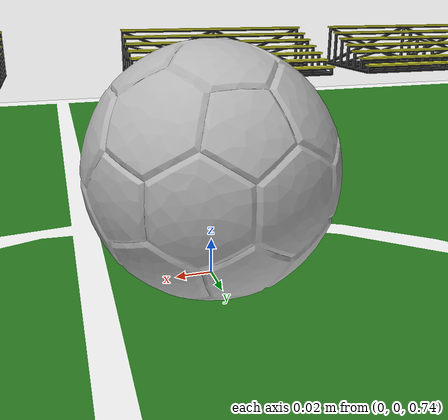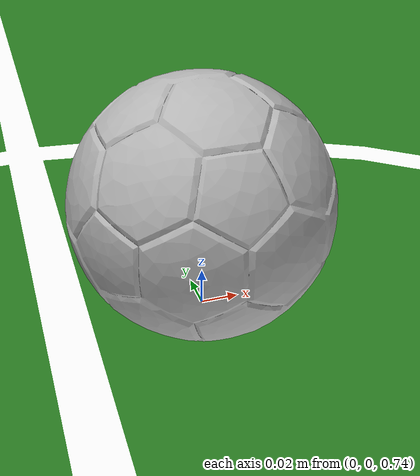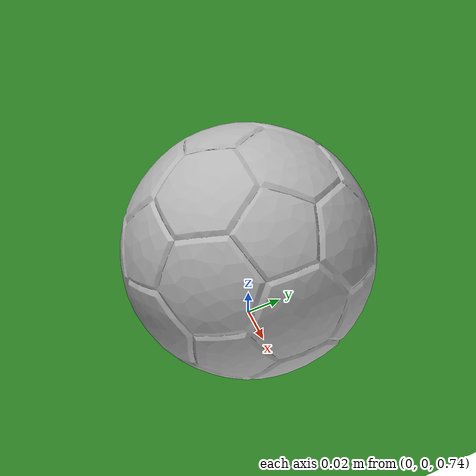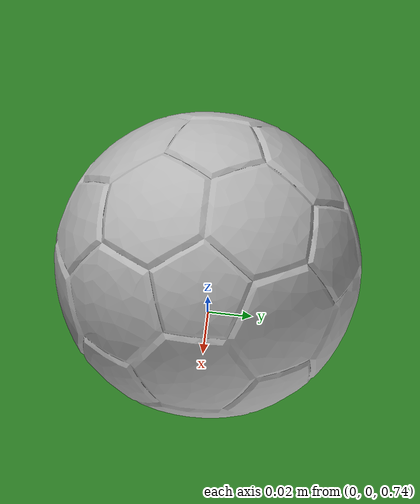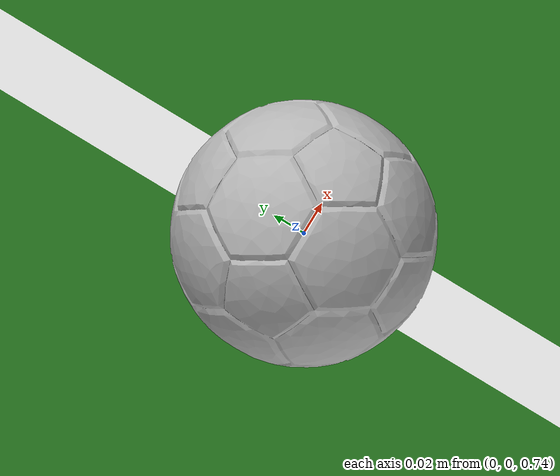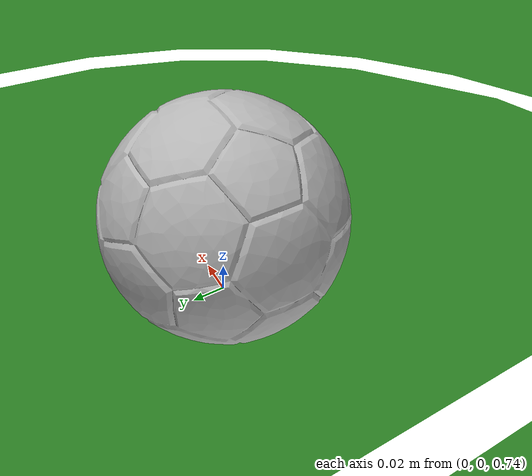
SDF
<?xml version="1.0" ?>

<sdf version="1.6">
  <world name="soccer_playground">
    <physics name="2.5ms" type="ignored">
      <max_step_size>0.0025</max_step_size>
      <real_time_factor>1</real_time_factor>
    </physics>

    <scene>
      <ambient>0.2 0.2 0.2 1</ambient>
      <background>0.8 0.8 0.8 1</background>
      <grid>true</grid>
      <shadows>true</shadows>
    </scene>

    <plugin
      filename="libignition-gazebo-physics-system.so"
      name="ignition::gazebo::systems::Physics">
    </plugin>
    <plugin
      filename="libignition-gazebo-user-commands-system.so"
      name="ignition::gazebo::systems::UserCommands">
    </plugin>
    <plugin
      filename="libignition-gazebo-contact-system.so"
      name="ignition::gazebo::systems::Contact">
    </plugin>
    <plugin
      filename="libignition-gazebo-scene-broadcaster-system.so"
      name="ignition::gazebo::systems::SceneBroadcaster">
    </plugin>

    <gui fullscreen="0">
      <!-- 3D scene -->
      <plugin filename="GzScene3D" name="3D View">
        <ignition-gui>
          <title>3D View</title>
          <property type="bool" key="showTitleBar">false</property>
          <property type="string" key="state">docked</property>
        </ignition-gui>
        <engine>ogre2</engine>
        <scene>scene</scene>
        <ambient_light>0.7 0.7 0.7</ambient_light>
        <background_color>0.8 0.8 0.8</background_color>
        <camera_pose>1 1 1 0 0.5 3.92</camera_pose>
      </plugin>

      <!-- World control -->
      <plugin filename="WorldControl" name="World control">
        <ignition-gui>
          <title>World control</title>
          <property type="bool" key="showTitleBar">false</property>
          <property type="bool" key="resizable">false</property>
          <property type="double" key="height">72</property>
          <property type="double" key="width">121</property>
          <property type="double" key="z">1</property>
          <property type="string" key="state">floating</property>
          <anchors target="3D View">
            <line own="left" target="left"/>
            <line own="bottom" target="bottom"/>
          </anchors>
        </ignition-gui>

        <play_pause>true</play_pause>
        <step>true</step>
        <start_paused>true</start_paused>
        <service>/world/soccer_playground/control</service>
        <stats_topic>/world/soccer_playground/stats</stats_topic>
      </plugin>

      <!-- World statistics -->
      <plugin filename="WorldStats" name="World stats">
        <ignition-gui>
          <title>World stats</title>
          <property type="bool" key="showTitleBar">false</property>
          <property type="bool" key="resizable">false</property>
          <property type="double" key="height">110</property>
          <property type="double" key="width">290</property>
          <property type="double" key="z">1</property>
          <property type="string" key="state">floating</property>
          <anchors target="3D View">
            <line own="right" target="right"/>
            <line own="bottom" target="bottom"/>
          </anchors>
        </ignition-gui>

        <sim_time>true</sim_time>
        <real_time>true</real_time>
        <real_time_factor>true</real_time_factor>
        <iterations>true</iterations>
        <topic>/world/soccer_playground/stats</topic>
      </plugin>
    </gui>

    <light type="directional" name="sun">
      <pose>0 0 10 0 0 0</pose>
      <diffuse>0.8 0.8 0.8 1</diffuse>
      <specular>0.2 0.2 0.2 1</specular>
      <attenuation>
        <range>1000</range>
        <linear>0.01</linear>
        <constant>0.9</constant>
        <quadratic>0.001</quadratic>
      </attenuation>
      <direction>-0.5 0.1 -0.9</direction>
      <cast_shadows>true</cast_shadows>
    </light>

    <include>
      <name>soccer_ball_0</name>
      <uri>soccer_ball_size_1</uri>
      <pose>0 0 0.8 0 0 0</pose>
    </include>

    <include>
      <name>soccer_field_0</name>
      <uri>soccer_field</uri>
    </include>

    <include>
      <name>ground_plane_0</name>
      <uri>ground_plane</uri>
    </include>
  </world>
</sdf>

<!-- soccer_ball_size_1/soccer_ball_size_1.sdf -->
<sdf version='1.7'>
  <model name="soccer_ball">
    <static>false</static>
    <link name="soccer_ball_link">
      <inertial>
        <mass>0.22</mass>
        <inertia>
          <ixx>3.72e-4</ixx>
          <ixy>0</ixy>
          <ixz>0</ixz>
          <iyy>3.72e-4</iyy>
          <iyz>0</iyz>
          <izz>3.72e-4</izz>
        </inertia>
      </inertial>
      <collision name="soccer_ball_collision">
        <geometry>
          <sphere>
            <radius>0.065</radius>
          </sphere>
        </geometry>
        <surface>
          <bounce>
            <restitution_coefficient>0.7</restitution_coefficient>
            <threshold>0.01</threshold>
          </bounce>
          <friction>
            <ode>
              <mu>0.1</mu>
              <mu2>0.04</mu2>
            </ode>
          </friction>
          <contact>
            <ode>
              <max_vel>10</max_vel>
              <min_depth>0.01</min_depth>
            </ode>
          </contact>
        </surface>
      </collision>
      <visual name="soccer_ball_visual">
        <geometry>
          <mesh>
            <uri>file://soccer_ball_size_1/meshes/soccer_ball.dae</uri>
          </mesh>
        </geometry>
      </visual>
    </link>
    <joint name="x_rotation_kinematic_joint" type="revolute">
      <child>soccer_ball_link</child>
      <parent>y_rotation_kinematic_link</parent>
      <axis>
        <xyz>1 0 0</xyz>
        <dynamics>
          <friction>0.001</friction>
          <damping>0.0001</damping>
        </dynamics>
      </axis>
    </joint>
    <link name="y_rotation_kinematic_link">
      <gravity>false</gravity>
      <inertial>
        <mass>1e-5</mass>
        <inertia>
          <ixx>1e-5</ixx>
          <ixy>0</ixy>
          <ixz>0</ixz>
          <iyy>1e-5</iyy>
          <iyz>0</iyz>
          <izz>1e-5</izz>
        </inertia>
      </inertial>
    </link>
    <joint name="y_rotation_kinematic_joint" type="revolute">
      <child>y_rotation_kinematic_link</child>
      <parent>z_rotation_kinematic_link</parent>
      <axis>
        <xyz>0 1 0</xyz>
        <dynamics>
          <friction>0.001</friction>
          <damping>0.0001</damping>
        </dynamics>
      </axis>
    </joint>
    <link name="z_rotation_kinematic_link">
      <gravity>false</gravity>
      <inertial>
        <mass>1e-5</mass>
        <inertia>
          <ixx>1e-5</ixx>
          <ixy>0</ixy>
          <ixz>0</ixz>
          <iyy>1e-5</iyy>
          <iyz>0</iyz>
          <izz>1e-5</izz>
        </inertia>
      </inertial>
    </link>
    <joint name="z_rotation_kinematic_joint" type="revolute">
      <child>z_rotation_kinematic_link</child>
      <parent>z_direction_kinematic_link</parent>
      <axis>
        <xyz>0 0 1</xyz>
        <dynamics>
          <friction>0.001</friction>
          <damping>0.0001</damping>
        </dynamics>
      </axis>
    </joint>
    <link name="z_direction_kinematic_link">
      <gravity>false</gravity>
      <inertial>
        <mass>1e-5</mass>
        <inertia>
          <ixx>1e-5</ixx>
          <ixy>0</ixy>
          <ixz>0</ixz>
          <iyy>1e-5</iyy>
          <iyz>0</iyz>
          <izz>1e-5</izz>
        </inertia>
      </inertial>
    </link>
    <joint name="z_direction_kinematic_joint" type="prismatic">
      <child>z_direction_kinematic_link</child>
      <parent>y_direction_kinematic_link</parent>
      <axis>
        <xyz>0 0 1</xyz>
        <dynamics>
          <friction>0.0001</friction>
          <damping>0.00001</damping>
        </dynamics>
      </axis>
    </joint>
    <link name="y_direction_kinematic_link">
      <gravity>false</gravity>
      <inertial>
        <mass>1e-5</mass>
      </inertial>
    </link>
    <joint name="y_direction_kinematic_joint" type="prismatic">
      <child>y_direction_kinematic_link</child>
      <parent>x_direction_kinematic_link</parent>
      <axis>
        <xyz>0 1 0</xyz>
        <dynamics>
          <friction>0.0001</friction>
          <damping>0.00001</damping>
        </dynamics>
      </axis>
    </joint>
    <link name="x_direction_kinematic_link">
      <gravity>false</gravity>
      <inertial>
        <mass>1e-5</mass>
      </inertial>
    </link>
    <joint name="x_direction_kinematic_joint" type="prismatic">
      <child>x_direction_kinematic_link</child>
      <parent>world</parent>
      <axis>
        <xyz>1 0 0</xyz>
        <dynamics>
          <friction>0.0001</friction>
          <damping>0.00001</damping>
        </dynamics>
      </axis>
    </joint>
  </model>
</sdf>

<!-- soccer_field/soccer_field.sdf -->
<sdf version='1.6'>
  <model name="soccer_field">
    <static>true</static>
    <link name="soccer_field_link">
      <pose>0 0 0 0 0 1.57</pose>
      <collision name="soccer_field_collision">
        <geometry>
          <mesh>
            <scale>0.3259 0.3259 0.3259</scale>
            <uri>file://soccer_field/meshes/collision/Soccer_Field.stl</uri>
          </mesh>
        </geometry>
        <surface>
          <bounce>
            <restitution_coefficient>0.1</restitution_coefficient>
            <threshold>0.005</threshold>
          </bounce>
        </surface>
      </collision>
      <visual name="soccer_field_visual">
        <geometry>
          <mesh>
            <scale>0.3259 0.3259 0.3259</scale>
            <uri>file://soccer_field/meshes/visual/Soccer_Field.dae</uri>
          </mesh>
        </geometry>
      </visual>
    </link>
  </model>
</sdf>
